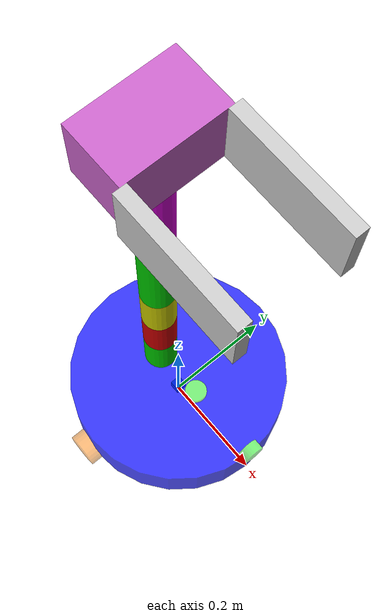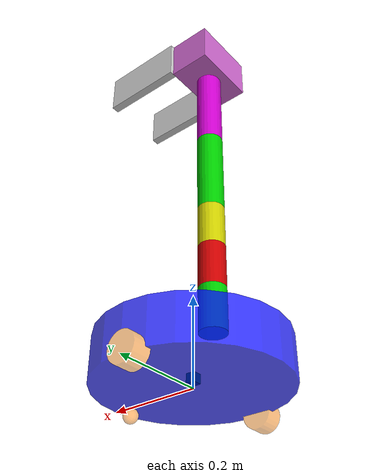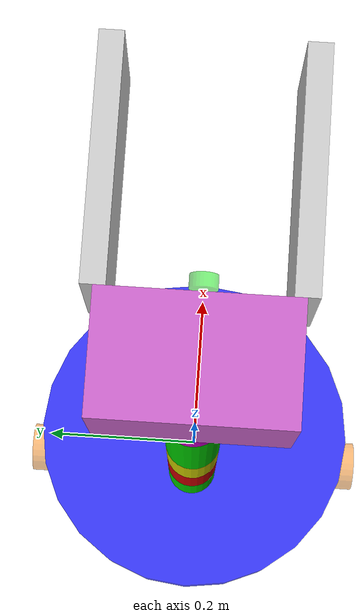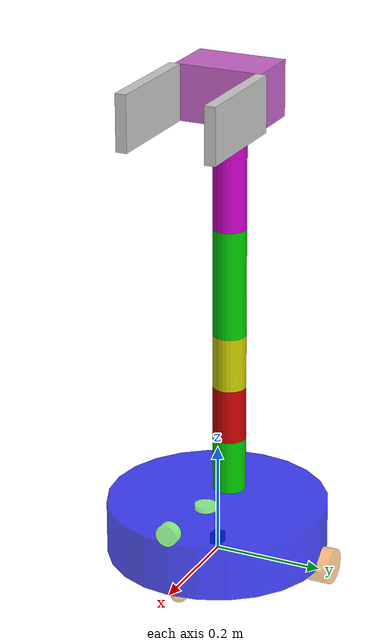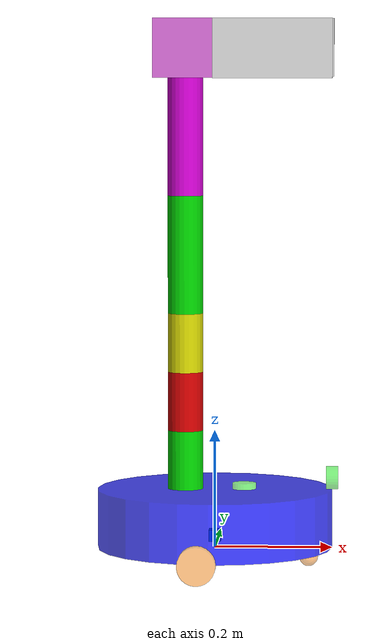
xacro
<?xml version="1.0"?>
<robot xmlns:xacro="http://www.ros.org/wiki/xacro" name="six_arm">
    <xacro:arg name="initial_positions_file" default="initial_positions.yaml" />

    <!-- Import six_arm urdf file -->
    <xacro:include filename="$(find mybot_description)/urdf/six_arm.urdf" />

    <!-- Import control_xacro -->
    <xacro:include filename="six_arm.ros2_control.xacro" />

    <xacro:six_arm_ros2_control name="FakeSystem" initial_positions_file="$(arg initial_positions_file)"/>

</robot>

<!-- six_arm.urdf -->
<robot name="six_arm">

    <link name="base_footprint"/>
    <!-- Base link -->
    <link name="base_link">
        <visual>
            <geometry>
                <cylinder length="0.1" radius="0.2"/>
            </geometry>
            <origin rpy="0 0 0" xyz="0 0 0.05"/>
            <material name="blue">
                <color rgba="0 0 1.0 0.75"/>
            </material>
        </visual>
        <collision>
            <geometry>
                <cylinder length="0.1" radius="0.2"/>
            </geometry>
            <origin rpy="0 0 0" xyz="0 0 0.05"/>
        </collision>
        <inertial>
            <mass value="0.2"/>
            <inertia ixx="0.0122666" ixy="0" ixz="0" iyy="0.0122666" iyz="0" izz="0.02"/>
        </inertial>
    </link>

    <joint name="base_joint" type="fixed">
        <parent link="base_footprint"/>
        <child link="base_link"/>
        <origin xyz="0.0 0.0 0.0" rpy="0 0 0"/>
    </joint>

    <!-- IMU -->
    <link name="imu_link">
        <visual>
            <origin xyz="0 0 0.0" rpy="0 0 0"/>
            <geometry>
                <box size="0.02 0.02 0.02"/>
            </geometry>
        </visual>
        <collision>
            <origin xyz="0 0 0.0" rpy="0 0 0"/>
            <geometry>
                <box size="0.02 0.02 0.02"/>
            </geometry>
        </collision>
        <inertial>
            <mass value="0.1"/>
            <inertia ixx="0.000190416666667" ixy="0" ixz="0" iyy="0.0001904" iyz="0" izz="0.00036"/>
        </inertial>
    </link>
    <joint name="imu_joint" type="fixed">
        <parent link="base_link" />
        <child link="imu_link" />
        <origin xyz="0 0 0.02" />
    </joint>

    <!-- 雷达 -->
    <link name="laser_link">
        <visual>
            <origin xyz="0 0 0" rpy="0 0 0"/>
            <geometry>
                <cylinder length="0.02" radius="0.02"/>
            </geometry>
            <material name="black">
                <color rgba="0.0 0.9 0.0 0.5" />
            </material>
        </visual>
        <collision>
            <origin xyz="0 0 0" rpy="0 0 0"/>
            <geometry>
                <cylinder length="0.02" radius="0.02"/>
            </geometry>
        </collision>
        <inertial>
            <mass value="0.1"/>
            <inertia ixx="0.000190416666667" ixy="0" ixz="0" iyy="0.0001904" iyz="0" izz="0.00036"/>
        </inertial>
    </link>
    <joint name="laser_joint" type="fixed">
        <parent link="base_link" />
        <child link="laser_link" />
        <origin xyz="0.05 0 0.1" />
    </joint>

    <!-- 相机 -->
    <link name="camera_link">
        <visual>
            <origin xyz="0 0 0" rpy="0 1.57079 0"/>
            <geometry>
                <cylinder length="0.02" radius="0.02"/>
            </geometry>
            <material name="black">
                <color rgba="0.0 0.9 0.0 0.5" />
            </material>
        </visual>
        <collision>
            <origin xyz="0 0 0" rpy="0 1.57079 0"/>
            <geometry>
                <cylinder length="0.02" radius="0.02"/>
            </geometry>
        </collision>
        <inertial>
            <mass value="0.1"/>
            <inertia ixx="0.000190416666667" ixy="0" ixz="0" iyy="0.0001904" iyz="0" izz="0.00036"/>
        </inertial>
    </link>
    <joint name="camera_joint" type="fixed">
        <parent link="base_link" />
        <child link="camera_link" />
        <origin xyz="0.2 0 0.12" />
    </joint>

    <!-- 左轮 -->
    <link name="left_wheel_link">
        <visual>
            <origin xyz="0 0 0" rpy="1.57079 0 0"/>
            <geometry>
                <cylinder length="0.04" radius="0.032"/>
            </geometry>
            <material name="orange">
                <color rgba="1.0 0.5 0.0 0.5" />
            </material>
        </visual>
        <collision>
            <origin xyz="0 0 0" rpy="1.57079 0 0"/>
            <geometry>
                <cylinder length="0.04" radius="0.032"/>
            </geometry>
        </collision>
        <inertial>
            <mass value="0.2"/>
            <inertia ixx="0.000190416666667" ixy="0" ixz="0" iyy="0.0001904" iyz="0" izz="0.00036"/>
        </inertial>
    </link>
    <joint name="left_wheel_joint" type="continuous">
        <parent link="base_link" />
        <child link="left_wheel_link" />
        <origin xyz="-0.02 0.20 0.0" />
        <axis xyz="0 1 0" />
    </joint>

    <!-- 右轮 -->
    <link name="right_wheel_link">
        <visual>
            <origin xyz="0 0 0" rpy="1.57079 0 0"/>
            <geometry>
                <cylinder length="0.04" radius="0.032"/>
            </geometry>
            <material name="orange">
                <color rgba="1.0 0.5 0.0 0.5" />
            </material>
        </visual>
        <collision>
            <origin xyz="0 0 0" rpy="1.57079 0 0"/>
            <geometry>
                <cylinder length="0.04" radius="0.032"/>
            </geometry>
        </collision>
        <inertial>
            <mass value="0.2"/>
            <inertia ixx="0.000190416666667" ixy="0" ixz="0" iyy="0.0001904" iyz="0" izz="0.00036"/>
        </inertial>
    </link>
    <joint name="right_wheel_joint" type="continuous">
        <parent link="base_link" />
        <child link="right_wheel_link" />
        <origin xyz="-0.02 -0.20 0.0" />
        <axis xyz="0 1 0" />
    </joint>

    <!-- 支撑轮 -->
    <link name="caster_link">
        <visual>
            <origin xyz="0 0 0" rpy="1.57079 0 0"/>
            <geometry>
                <sphere radius="0.016"/>
            </geometry>
            <material name="orange">
                <color rgba="1.0 0.5 0.0 0.5" />
            </material>
        </visual>
        <collision>
            <origin xyz="0 0 0" rpy="1.57079 0 0"/>
            <geometry>
                <sphere radius="0.016"/>
            </geometry>
        </collision>
        <inertial>
            <mass value="0.5"/>
            <inertia ixx="0.000190416666667" ixy="0" ixz="0" iyy="0.0001904" iyz="0" izz="0.00036"/>
        </inertial>
    </link>
    <joint name="caster_joint" type="fixed">
        <parent link="base_link" />
        <child link="caster_link" />
        <origin xyz="0.16 0.0 -0.016" />
        <axis xyz="0 1 0" />
    </joint>

    <!-- Link 1 -->
    <link name="link1">
        <visual>
            <geometry>
                <cylinder length="0.1" radius="0.03"/>
            </geometry>
            <origin rpy="0 0 0" xyz="0 0 0.05"/>
            <material name="green">
                <color rgba="0 0.8 0 1"/>
            </material>
        </visual>
        <collision>
            <geometry>
                <cylinder length="0.1" radius="0.03"/>
            </geometry>
            <origin rpy="0 0 0" xyz="0 0 0.05"/>
        </collision>
        <inertial>
            <mass value="0.2"/>
            <inertia ixx="0.000190416666667" ixy="0" ixz="0" iyy="0.0001904" iyz="0" izz="0.00036"/>
        </inertial>
    </link>

    <!-- Joint 1: rotation around X-axis -->
    <joint name="joint1" type="continuous">
        <parent link="base_link"/>
        <child link="link1"/>
        <axis xyz="0 0 1"/>
        <origin xyz="-0.05 0 0.1" rpy="0 0 0"/>
    </joint>

    <!-- Link 2 -->
    <link name="link2">
        <visual>
            <geometry>
                <cylinder length="0.1" radius="0.03"/>
            </geometry>
            <origin rpy="0 0 0" xyz="0 0 0.05"/>
            <material name="red">
                <color rgba="0.8 0 0 1"/>
            </material>
        </visual>
        <collision>
            <geometry>
                <cylinder length="0.1" radius="0.03"/>
            </geometry>
            <origin rpy="0 0 0" xyz="0 0 0.05"/>
        </collision>
        <inertial>
            <mass value="0.2"/>
            <inertia ixx="0.000190416666667" ixy="0" ixz="0" iyy="0.0001904" iyz="0" izz="0.00036"/>
        </inertial>
    </link>

    <!-- Joint 2: rotation around Y-axis -->
    <joint name="joint2" type="continuous">
        <parent link="link1"/>
        <child link="link2"/>
        <axis xyz="0 1 0"/>
        <origin xyz="0 0 0.1"/>
    </joint>

    <!-- Link 3 -->
    <link name="link3">
        <visual>
            <geometry>
                <cylinder length="0.1" radius="0.03"/>
            </geometry>
            <origin rpy="0 0 0" xyz="0 0 0.05"/>
            <material name="yellow">
                <color rgba="0.8 0.8 0 1"/>
            </material>
        </visual>
        <collision>
            <geometry>
                <cylinder length="0.1" radius="0.03"/>
            </geometry>
            <origin rpy="0 0 0" xyz="0 0 0.05"/>
        </collision>
        <inertial>
            <mass value="0.2"/>
            <inertia ixx="0.000190416666667" ixy="0" ixz="0" iyy="0.0001904" iyz="0" izz="0.00036"/>
        </inertial>
    </link>

    <!-- Joint 3: rotation around x-axis -->
    <joint name="joint3" type="continuous">
        <parent link="link2"/>
        <child link="link3"/>
        <axis xyz="0 1 0"/>
        <origin xyz="0 0 0.1"/>
    </joint>

    <!-- Link 4 -->
    <link name="link4">
        <visual>
            <geometry>
                <cylinder length="0.2" radius="0.03"/>
            </geometry>
            <origin rpy="0 0 0" xyz="0 0 0.05"/>
            <material name="green">
                <color rgba="0 0.8 0 1"/>
            </material>
        </visual>
        <collision>
            <geometry>
                <cylinder length="0.2" radius="0.03"/>
            </geometry>
            <origin rpy="0 0 0" xyz="0 0 0.05"/>
        </collision>
        <inertial>
            <mass value="0.2"/>
            <inertia ixx="0.000190416666667" ixy="0" ixz="0" iyy="0.0001904" iyz="0" izz="0.00036"/>
        </inertial>
    </link>

    <!-- Joint 4: rotation around X-axis -->
    <joint name="joint4" type="continuous">
        <parent link="link3"/>
        <child link="link4"/>
        <axis xyz="1 0 0"/>
        <origin xyz="0 0 0.15"/>
    </joint>

    <!-- Link 5 -->
    <link name="link5">
        <visual>
            <geometry>
                <cylinder length="0.2" radius="0.03"/>
            </geometry>
            <origin rpy="0 0 0" xyz="0 0 0.1"/>
            <material name="purple">
                <color rgba="0.8 0 0.8 1"/>
            </material>
        </visual>
        <collision>
            <geometry>
                <cylinder length="0.2" radius="0.03"/>
            </geometry>
            <origin rpy="0 0 0" xyz="0 0 0.1"/>
        </collision>
        <inertial>
            <mass value="0.2"/>
            <inertia ixx="0.000190416666667" ixy="0" ixz="0" iyy="0.0001904" iyz="0" izz="0.00036"/>
        </inertial>
    </link>

    <!-- Joint 5: rotation around Y-axis -->
    <joint name="joint5" type="continuous">
        <parent link="link4"/>
        <child link="link5"/>
        <axis xyz="0 1 0"/>
        <origin xyz="0 0 0.15"/>
    </joint>

    <!-- Link 6 -->
    <link name="link6">
        <visual>
            <geometry>
                <box size="0.1 0.16 0.1"/>
            </geometry>
            <origin rpy="0 0 0" xyz="0 0 0"/>
            <material name="pink">
                <color rgba="0.8 0.4 0.8 1"/>
            </material>
        </visual>
        <collision>
            <geometry>
                <box size="0.1 0.2 0.1"/>
            </geometry>
            <origin rpy="0 0 0" xyz="0 0 0"/>
        </collision>
        <inertial>
            <mass value="0.2"/>
            <inertia ixx="0.000190416666667" ixy="0" ixz="0" iyy="0.0001904" iyz="0" izz="0.00036"/>
        </inertial>
    </link>

    <!-- Joint 6: rotation around Z-axis -->
    <joint name="joint6" type="continuous">
        <parent link="link5"/>
        <child link="link6"/>
        <axis xyz="0 0 1"/>
        <origin xyz="0 0 0.25"/>
    </joint>

    <!-- Link 7 爪子 -->
    <link name="link7">
        <visual>
            <geometry>
                <box size="0.2 0.02 0.1"/>
            </geometry>
            <origin rpy="0 0 0" xyz="0.1 0 0"/>
            <material name="pink">
                <color rgba="0.8 0.8 0.8 1"/>
            </material>
        </visual>
        <collision>
            <geometry>
                <box size="0.2 0.02 0.1"/>
            </geometry>
            <origin rpy="0 0 0" xyz="0.1 0 0"/>
            <surface>
                <friction>
                    <mu>1.0</mu>                    <!-- 摩擦系数 -->
                    <mu2>1.0</mu2>
                    <slip1>0.0</slip1>
                    <slip2>0.0</slip2>
                </friction>
            </surface>
        </collision>
        <inertial>
            <mass value="0.2"/>
            <inertia ixx="0.000190416666667" ixy="0" ixz="0" iyy="0.0001904" iyz="0" izz="0.00036"/>
        </inertial>
    </link>
    <joint name="joint7" type="continuous">
        <parent link="link6"/>
        <child link="link7"/>
        <axis xyz="0 0 1"/>
        <origin xyz="0.05 0.08 0.0" rpy="0 0 0"/>
    </joint>

    <!-- Link 8 爪子 -->
    <link name="link8">
        <visual>
            <geometry>
                <box size="0.2 0.02 0.1"/>
            </geometry>
            <origin rpy="0 0 0" xyz="0.1 0 0"/>
            <material name="pink">
                <color rgba="0.8 0.8 0.8 1"/>
            </material>
        </visual>
        <collision>
            <geometry>
                <box size="0.2 0.02 0.1"/>
            </geometry>
            <origin rpy="0 0 0" xyz="0.1 0 0"/>
            <surface>
                <friction>
                    <mu>1.0</mu>                    <!-- 摩擦系数 -->
                    <mu2>1.0</mu2>
                    <slip1>0.0</slip1>
                    <slip2>0.0</slip2>
                </friction>
            </surface>
        </collision>
        <inertial>
            <mass value="0.2"/>
            <inertia ixx="0.000190416666667" ixy="0" ixz="0" iyy="0.0001904" iyz="0" izz="0.00036"/>
        </inertial>
    </link>
    <joint name="joint8" type="continuous">
        <parent link="link6"/>
        <child link="link8"/>
        <axis xyz="0 0 1"/>
        <origin xyz="0.05 -0.08 0.0" rpy="0 0 0"/>
    </joint>
    <disable_collisions link1="link6" link2="link7" reason="Adjacent"/>
    <disable_collisions link1="link6" link2="link8" reason="Adjacent"/>

    <gazebo reference="caster_link">
        <mu1 value="0.0"/>
        <mu2 value="0.0"/>
        <kp value="1000000.0" />
        <kd value="10.0" />
    </gazebo>

    <!-- 差速插件 -->
    <gazebo>
        <plugin name='diff_drive' filename='libgazebo_ros_diff_drive.so'>
            <ros>
                <namespace>/</namespace>
                <remapping>cmd_vel:=cmd_vel</remapping>
                <remapping>odom:=odom</remapping>
            </ros>
            <update_rate>30</update_rate>
            <!-- wheels -->
            <left_joint>left_wheel_joint</left_joint>
            <right_joint>right_wheel_joint</right_joint>
            <!-- kinematics -->
            <wheel_separation>0.4</wheel_separation>
            <wheel_diameter>0.065</wheel_diameter>
            <!-- limits -->
            <max_wheel_torque>20</max_wheel_torque>
            <max_wheel_acceleration>5.0</max_wheel_acceleration>
            <!-- output -->
            <publish_odom>true</publish_odom>
            <publish_odom_tf>true</publish_odom_tf>
            <publish_wheel_tf>true</publish_wheel_tf>
            <odometry_frame>odom</odometry_frame>
            <robot_base_frame>base_footprint</robot_base_frame>
        </plugin>
        <plugin name="fishbot_joint_state" filename="libgazebo_ros_joint_state_publisher.so">
            <ros>
                <remapping>~/out:=joint_states</remapping>
            </ros>
            <update_rate>30</update_rate>
            <joint_name>right_wheel_joint</joint_name>
            <joint_name>left_wheel_joint</joint_name>
        </plugin>
    </gazebo>

    <!-- 夹爪插件 -->
    <gazebo>
        <plugin name="gazebo_grasp_fix" filename="libgazebo_grasp_fix.so">
            <arm>
                <arm_name>my_arm</arm_name>
                <palm_link> link6  </palm_link>
                <gripper_link> link7 </gripper_link>
                <gripper_link> link8 </gripper_link>
            </arm>
            <forces_angle_tolerance>100</forces_angle_tolerance>
            <update_rate>20</update_rate>
            <grip_count_threshold>1</grip_count_threshold>
            <max_grip_count>2</max_grip_count>
            <release_tolerance>0.0198</release_tolerance>
            <disable_collisions_on_attach>true</disable_collisions_on_attach>
            <contact_topic>__default_topic__</contact_topic>
        </plugin>

    </gazebo>
    <!-- IMU插件 -->
    <gazebo reference="imu_link">
        <sensor name="imu_sensor" type="imu">
            <plugin filename="libgazebo_ros_imu_sensor.so" name="imu_plugin">
                <ros>
                    <namespace>/</namespace>
                    <remapping>~/out:=imu</remapping>
                </ros>
                <initial_orientation_as_reference>false</initial_orientation_as_reference>
            </plugin>
            <always_on>true</always_on>
            <update_rate>100</update_rate>
            <visualize>true</visualize>
            <imu>
                <angular_velocity>
                    <x>
                        <noise type="gaussian">
                            <mean>0.0</mean>
                            <stddev>2e-4</stddev>
                            <bias_mean>0.0000075</bias_mean>
                            <bias_stddev>0.0000008</bias_stddev>
                        </noise>
                    </x>
                    <y>
                        <noise type="gaussian">
                            <mean>0.0</mean>
                            <stddev>2e-4</stddev>
                            <bias_mean>0.0000075</bias_mean>
                            <bias_stddev>0.0000008</bias_stddev>
                        </noise>
                    </y>
                    <z>
                        <noise type="gaussian">
                            <mean>0.0</mean>
                            <stddev>2e-4</stddev>
                            <bias_mean>0.0000075</bias_mean>
                            <bias_stddev>0.0000008</bias_stddev>
                        </noise>
                    </z>
                </angular_velocity>
                <linear_acceleration>
                    <x>
                        <noise type="gaussian">
                            <mean>0.0</mean>
                            <stddev>1.7e-3</stddev>
                            <bias_mean>0.000001</bias_mean>
                            <bias_stddev>0.0000001</bias_stddev>
                        </noise>
                    </x>
                    <y>
                        <noise type="gaussian">
                            <mean>0.0</mean>
                            <stddev>1.7e-3</stddev>
                            <bias_mean>0.000001</bias_mean>
                            <bias_stddev>0.0000001</bias_stddev>
                        </noise>
                    </y>
                    <z>
                        <noise type="gaussian">
                            <mean>0.0</mean>
                            <stddev>1.7e-3</stddev>
                            <bias_mean>0.000001</bias_mean>
                            <bias_stddev>0.0000001</bias_stddev>
                        </noise>
                    </z>
                </linear_acceleration>
            </imu>
        </sensor>
    </gazebo>

    <!-- 雷达插件 -->
    <gazebo reference="laser_link">
        <sensor name="laser_sensor" type="ray">
            <always_on>true</always_on>
            <visualize>false</visualize>
            <update_rate>10</update_rate>
            <pose>0 0 0.075 0 0 0</pose>
            <ray>
                <scan>
                    <horizontal>
                        <samples>360</samples>
                        <resolution>1.000000</resolution>
                        <min_angle>0.000000</min_angle>
                        <max_angle>6.280000</max_angle>
                    </horizontal>
                </scan>
                <range>
                    <min>0.20000</min>
                    <max>6</max>
                    <resolution>0.015000</resolution>
                </range>
                <noise>
                    <type>gaussian</type>
                    <mean>0.0</mean>
                    <stddev>0.0001</stddev>
                </noise>
            </ray>
            <plugin name="laserscan" filename="libgazebo_ros_ray_sensor.so">
                <ros>
                    <remapping>~/out:=scan</remapping>
                </ros>
                <output_type>sensor_msgs/LaserScan</output_type>
                <frame_name>laser_link</frame_name>
            </plugin>
        </sensor>
    </gazebo>

    <!-- 深度相机插件 -->
    <gazebo reference="camera_link">
        <sensor type="camera" name="camera">
            <update_rate>30.0</update_rate>
            <camera name="head">
                <horizontal_fov>1.3962634</horizontal_fov>
                <image>
                    <width>1080</width>
                    <height>720</height>
                    <format>R8G8B8</format>
                </image>
                <clip>
                    <near>0.02</near>
                    <far>300</far>
                </clip>
                <noise>
                    <type>gaussian</type>
                    <mean>0.0</mean>
                    <stddev>0.007</stddev>
                </noise>
            </camera>
            <plugin name="camera_controller" filename="libgazebo_ros_camera.so">
                <alwaysOn>true</alwaysOn>
                <updateRate>0.0</updateRate>
                <cameraName>/camera</cameraName>
                <imageTopicName>image_raw</imageTopicName>
                <cameraInfoTopicName>camera_info</cameraInfoTopicName>
                <frameName>camera_link</frameName>
                <hackBaseline>0.07</hackBaseline>
            </plugin>
        </sensor>

        <!-- 添加深度相机 -->
        <sensor type="depth" name="depth_camera">
            <update_rate>30.0</update_rate>
            <camera name="depth">
                <horizontal_fov>1.3962634</horizontal_fov>
                <image>
                    <width>1080</width>
                    <height>720</height>
                    <format>L16</format>
                </image>
                <clip>
                    <near>0.02</near>
                    <far>300</far>
                </clip>
            </camera>
            <plugin name="depth_camera_controller" filename="libgazebo_ros_camera.so">
                <alwaysOn>true</alwaysOn>
                <updateRate>0.0</updateRate>
                <cameraName>/depth_camera</cameraName>
                <imageTopicName>depth_image_raw</imageTopicName>
                <cameraInfoTopicName>depth_camera_info</cameraInfoTopicName>                <!-- 确保使用这个参数 -->
                <frameName>camera_link</frameName>
            </plugin>
        </sensor>
        <material>Gazebo/Blue</material>
    </gazebo>

    <!-- 参考link -->
    <gazebo reference="base_link">
        <material>Gazebo/Black</material>
        <gravity>true</gravity>
        <selfCollide>false</selfCollide>
    </gazebo>
    <gazebo reference="caster_link">
        <material>Gazebo/Black</material>
        <selfCollide>false</selfCollide>
    </gazebo>
    <gazebo reference="laser_link">
        <material>Gazebo/Black</material>
        <selfCollide>false</selfCollide>
    </gazebo>
    <gazebo reference="link1">
        <material>Gazebo/Gray</material>
        <selfCollide>false</selfCollide>
    </gazebo>
    <gazebo reference="link2">
        <material>Gazebo/Red</material>
        <selfCollide>false</selfCollide>
    </gazebo>
    <gazebo reference="link3">
        <material>Gazebo/Blue</material>
        <selfCollide>false</selfCollide>
    </gazebo>
    <gazebo reference="link4">
        <material>Gazebo/Green</material>
        <selfCollide>false</selfCollide>
    </gazebo>
    <gazebo reference="link5">
        <material>Gazebo/Yellow</material>
        <selfCollide>false</selfCollide>
    </gazebo>
    <gazebo reference="link6">
        <material>Gazebo/Orange</material>
        <selfCollide>false</selfCollide>
    </gazebo>
    <gazebo reference="link7">
        <material>Gazebo/Orange</material>
        <selfCollide>false</selfCollide>
    </gazebo>
    <gazebo reference="link8">
        <material>Gazebo/Orange</material>
        <selfCollide>false</selfCollide>
    </gazebo>

    <!-- 在运行demo.launch.py时，需要注释这个ros2_control节点，因为它使用了xxx.ros2_control.xacro来生成了ros2_control节点-->
    <ros2_control name="GazeboSystem" type="system">
        <hardware>
            <plugin>gazebo_ros2_control/GazeboSystem</plugin>
        </hardware>
        <joint name="joint1">
            <command_interface name="position">
                <param name="min">-1</param>
                <param name="max">1</param>
            </command_interface>
            <state_interface name="position">
                <param name="initial_value">0.0</param>
            </state_interface>
            <state_interface name="velocity"/>
        </joint>
        <joint name="joint2">
            <command_interface name="position">
                <param name="min">-1</param>
                <param name="max">1</param>
            </command_interface>
            <state_interface name="position">
                <param name="initial_value">0.0</param>
            </state_interface>
            <state_interface name="velocity"/>
        </joint>
        <joint name="joint3">
            <command_interface name="position">
                <param name="min">-1</param>
                <param name="max">1</param>
            </command_interface>
            <state_interface name="position">
                <param name="initial_value">0.0</param>
            </state_interface>
            <state_interface name="velocity"/>
        </joint>
        <joint name="joint4">
            <command_interface name="position">
                <param name="min">-1</param>
                <param name="max">1</param>
            </command_interface>
            <state_interface name="position">
                <param name="initial_value">0.0</param>
            </state_interface>
            <state_interface name="velocity"/>
        </joint>
        <joint name="joint5">
            <command_interface name="position">
                <param name="min">-1</param>
                <param name="max">1</param>
            </command_interface>
            <state_interface name="position">
                <param name="initial_value">0.0</param>
            </state_interface>
            <state_interface name="velocity"/>
        </joint>
        <joint name="joint6">
            <command_interface name="position">
                <param name="min">-1</param>
                <param name="max">1</param>
            </command_interface>
            <state_interface name="position">
                <param name="initial_value">0.0</param>
            </state_interface>
            <state_interface name="velocity"/>
        </joint>
        <joint name="joint7">
            <command_interface name="position">
                <param name="min">-1</param>
                <param name="max">1</param>
            </command_interface>
            <state_interface name="position">
                <param name="initial_value">0.0</param>
            </state_interface>
            <state_interface name="velocity"/>
        </joint>
        <joint name="joint8">
            <command_interface name="position">
                <param name="min">-1</param>
                <param name="max">1</param>
            </command_interface>
            <state_interface name="position">
                <param name="initial_value">0.0</param>
            </state_interface>
            <state_interface name="velocity"/>
        </joint>
    </ros2_control>

    <gazebo>
        <plugin filename="libgazebo_ros2_control.so" name="gazebo_ros2_control">
            <parameters>/home/leo/leofile/robot_grasp/src/mybot_description/config/ros2_controllers.yaml</parameters>
            <robot_param_node>robot_state_publisher</robot_param_node>
        </plugin>
    </gazebo>

</robot>
